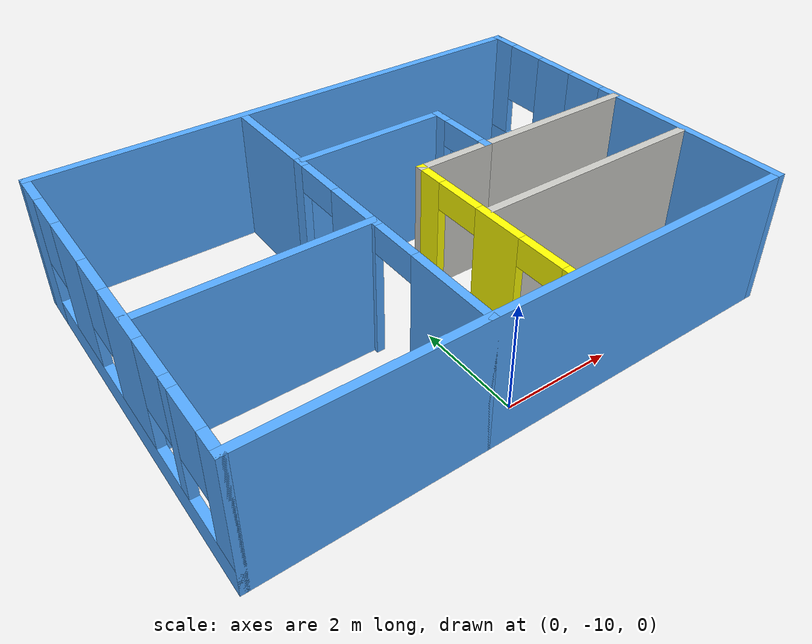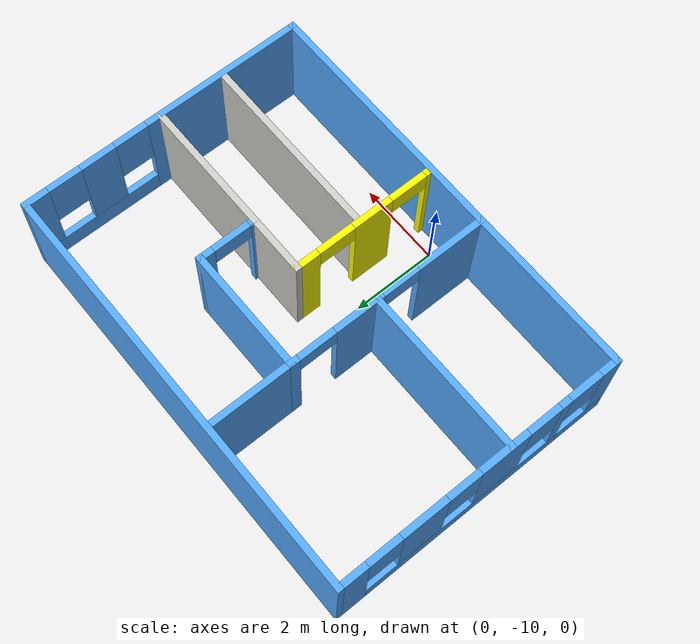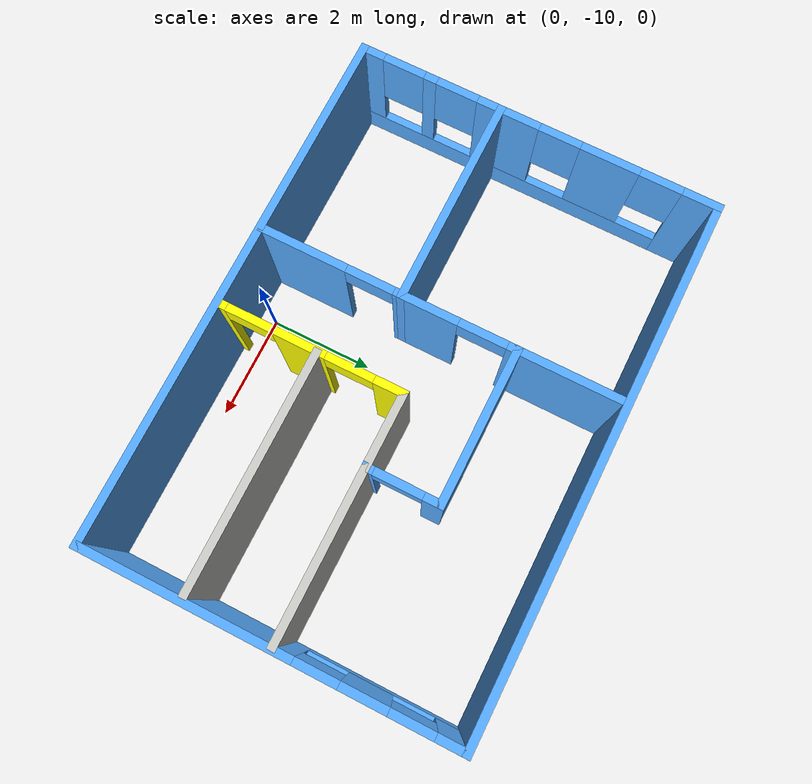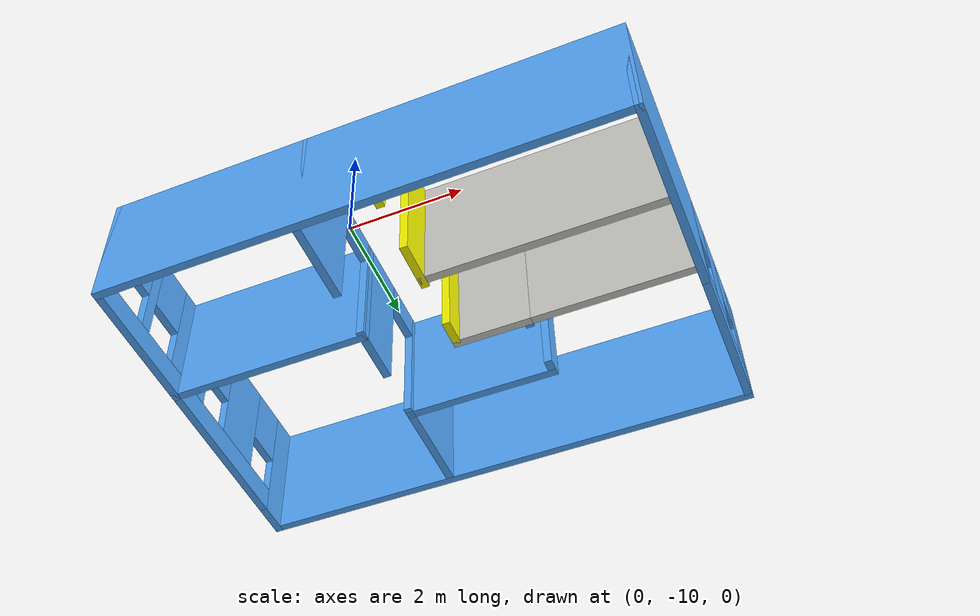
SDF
<?xml version='1.0'?>
<sdf version='1.6'>
  <model name='building'>
    <pose frame=''>0.225 -6.955 0 0 -0 0</pose>
    <link name='Wall_13'>
      <pose frame=''>-4.925 0 0 0 0 -1.5708</pose>
      <visual name='Wall_13_Visual_0'>
        <pose frame=''>-3.1325 0 1.25 0 -0 0</pose>
        <geometry>
          <box>
            <size>0.735 0.15 2.5</size>
          </box>
        </geometry>
        <material>
          <script>
            <uri>file://media/materials/scripts/gazebo.material</uri>
            <name>Gazebo/Grey</name>
          </script>
          <ambient>0.333333 0.666667 1 1</ambient>
        </material>
        <meta>
          <layer>0</layer>
        </meta>
      </visual>
      <collision name='Wall_13_Collision_0'>
        <geometry>
          <box>
            <size>0.735 0.15 2.5</size>
          </box>
        </geometry>
        <pose frame=''>-3.1325 0 1.25 0 -0 0</pose>
      </collision>
      <visual name='Wall_13_Visual_1'>
        <pose frame=''>0.3675 0 0.25 0 -0 0</pose>
        <geometry>
          <box>
            <size>6.265 0.15 0.5</size>
          </box>
        </geometry>
        <material>
          <script>
            <uri>file://media/materials/scripts/gazebo.material</uri>
            <name>Gazebo/Grey</name>
          </script>
          <ambient>0.333333 0.666667 1 1</ambient>
        </material>
        <meta>
          <layer>0</layer>
        </meta>
      </visual>
      <collision name='Wall_13_Collision_1'>
        <geometry>
          <box>
            <size>6.265 0.15 0.5</size>
          </box>
        </geometry>
        <pose frame=''>0.3675 0 0.25 0 -0 0</pose>
      </collision>
      <visual name='Wall_13_Visual_2'>
        <pose frame=''>-1.405 0 1.5 0 -0 0</pose>
        <geometry>
          <box>
            <size>1.12 0.15 2</size>
          </box>
        </geometry>
        <material>
          <script>
            <uri>file://media/materials/scripts/gazebo.material</uri>
            <name>Gazebo/Grey</name>
          </script>
          <ambient>0.333333 0.666667 1 1</ambient>
        </material>
        <meta>
          <layer>0</layer>
        </meta>
      </visual>
      <collision name='Wall_13_Collision_2'>
        <geometry>
          <box>
            <size>1.12 0.15 2</size>
          </box>
        </geometry>
        <pose frame=''>-1.405 0 1.5 0 -0 0</pose>
      </collision>
      <visual name='Wall_13_Visual_3'>
        <pose frame=''>0.555 0 1.5 0 -0 0</pose>
        <geometry>
          <box>
            <size>1.2 0.15 2</size>
          </box>
        </geometry>
        <material>
          <script>
            <uri>file://media/materials/scripts/gazebo.material</uri>
            <name>Gazebo/Grey</name>
          </script>
          <ambient>0.333333 0.666667 1 1</ambient>
        </material>
        <meta>
          <layer>0</layer>
        </meta>
      </visual>
      <collision name='Wall_13_Collision_3'>
        <geometry>
          <box>
            <size>1.2 0.15 2</size>
          </box>
        </geometry>
        <pose frame=''>0.555 0 1.5 0 -0 0</pose>
      </collision>
      <visual name='Wall_13_Visual_4'>
        <pose frame=''>2.08 0 1.5 0 -0 0</pose>
        <geometry>
          <box>
            <size>0.25 0.15 2</size>
          </box>
        </geometry>
        <material>
          <script>
            <uri>file://media/materials/scripts/gazebo.material</uri>
            <name>Gazebo/Grey</name>
          </script>
          <ambient>0.333333 0.666667 1 1</ambient>
        </material>
        <meta>
          <layer>0</layer>
        </meta>
      </visual>
      <collision name='Wall_13_Collision_4'>
        <geometry>
          <box>
            <size>0.25 0.15 2</size>
          </box>
        </geometry>
        <pose frame=''>2.08 0 1.5 0 -0 0</pose>
      </collision>
      <visual name='Wall_13_Visual_5'>
        <pose frame=''>3.2525 0 1.5 0 -0 0</pose>
        <geometry>
          <box>
            <size>0.495 0.15 2</size>
          </box>
        </geometry>
        <material>
          <script>
            <uri>file://media/materials/scripts/gazebo.material</uri>
            <name>Gazebo/Grey</name>
          </script>
          <ambient>0.333333 0.666667 1 1</ambient>
        </material>
        <meta>
          <layer>0</layer>
        </meta>
      </visual>
      <collision name='Wall_13_Collision_5'>
        <geometry>
          <box>
            <size>0.495 0.15 2</size>
          </box>
        </geometry>
        <pose frame=''>3.2525 0 1.5 0 -0 0</pose>
      </collision>
      <visual name='Wall_13_Visual_6'>
        <pose frame=''>-2.365 0 1.9 0 -0 0</pose>
        <geometry>
          <box>
            <size>0.8 0.15 1.2</size>
          </box>
        </geometry>
        <material>
          <script>
            <uri>file://media/materials/scripts/gazebo.material</uri>
            <name>Gazebo/Grey</name>
          </script>
          <ambient>0.333333 0.666667 1 1</ambient>
        </material>
        <meta>
          <layer>0</layer>
        </meta>
      </visual>
      <collision name='Wall_13_Collision_6'>
        <geometry>
          <box>
            <size>0.8 0.15 1.2</size>
          </box>
        </geometry>
        <pose frame=''>-2.365 0 1.9 0 -0 0</pose>
      </collision>
      <visual name='Wall_13_Visual_7'>
        <pose frame=''>-0.445 0 1.9 0 -0 0</pose>
        <geometry>
          <box>
            <size>0.8 0.15 1.2</size>
          </box>
        </geometry>
        <material>
          <script>
            <uri>file://media/materials/scripts/gazebo.material</uri>
            <name>Gazebo/Grey</name>
          </script>
          <ambient>0.333333 0.666667 1 1</ambient>
        </material>
        <meta>
          <layer>0</layer>
        </meta>
      </visual>
      <collision name='Wall_13_Collision_7'>
        <geometry>
          <box>
            <size>0.8 0.15 1.2</size>
          </box>
        </geometry>
        <pose frame=''>-0.445 0 1.9 0 -0 0</pose>
      </collision>
      <visual name='Wall_13_Visual_8'>
        <pose frame=''>1.555 0 1.9 0 -0 0</pose>
        <geometry>
          <box>
            <size>0.8 0.15 1.2</size>
          </box>
        </geometry>
        <material>
          <script>
            <uri>file://media/materials/scripts/gazebo.material</uri>
            <name>Gazebo/Grey</name>
          </script>
          <ambient>0.333333 0.666667 1 1</ambient>
        </material>
        <meta>
          <layer>0</layer>
        </meta>
      </visual>
      <collision name='Wall_13_Collision_8'>
        <geometry>
          <box>
            <size>0.8 0.15 1.2</size>
          </box>
        </geometry>
        <pose frame=''>1.555 0 1.9 0 -0 0</pose>
      </collision>
      <visual name='Wall_13_Visual_9'>
        <pose frame=''>2.605 0 1.9 0 -0 0</pose>
        <geometry>
          <box>
            <size>0.8 0.15 1.2</size>
          </box>
        </geometry>
        <material>
          <script>
            <uri>file://media/materials/scripts/gazebo.material</uri>
            <name>Gazebo/Grey</name>
          </script>
          <ambient>0.333333 0.666667 1 1</ambient>
        </material>
        <meta>
          <layer>0</layer>
        </meta>
      </visual>
      <collision name='Wall_13_Collision_9'>
        <geometry>
          <box>
            <size>0.8 0.15 1.2</size>
          </box>
        </geometry>
        <pose frame=''>2.605 0 1.9 0 -0 0</pose>
      </collision>
    </link>
    <link name='Wall_14'>
      <collision name='Wall_14_Collision'>
        <geometry>
          <box>
            <size>10 0.15 2.5</size>
          </box>
        </geometry>
        <pose frame=''>0 0 1.25 0 -0 0</pose>
      </collision>
      <visual name='Wall_14_Visual'>
        <pose frame=''>0 0 1.25 0 -0 0</pose>
        <geometry>
          <box>
            <size>10 0.15 2.5</size>
          </box>
        </geometry>
        <material>
          <script>
            <uri>file://media/materials/scripts/gazebo.material</uri>
            <name>Gazebo/Grey</name>
          </script>
          <ambient>0.333333 0.666667 1 1</ambient>
        </material>
        <meta>
          <layer>0</layer>
        </meta>
      </visual>
      <pose frame=''>0 -3.425 0 0 -0 0</pose>
    </link>
    <link name='Wall_15'>
      <pose frame=''>4.925 0 0 0 -0 1.5708</pose>
      <visual name='Wall_15_Visual_0'>
        <pose frame=''>-1.5275 0 1.25 0 -0 0</pose>
        <geometry>
          <box>
            <size>3.945 0.15 2.5</size>
          </box>
        </geometry>
        <material>
          <script>
            <uri>file://media/materials/scripts/gazebo.material</uri>
            <name>Gazebo/Grey</name>
          </script>
          <ambient>0.333333 0.666667 1 1</ambient>
        </material>
        <meta>
          <layer>0</layer>
        </meta>
      </visual>
      <collision name='Wall_15_Collision_0'>
        <geometry>
          <box>
            <size>3.945 0.15 2.5</size>
          </box>
        </geometry>
        <pose frame=''>-1.5275 0 1.25 0 -0 0</pose>
      </collision>
      <visual name='Wall_15_Visual_1'>
        <pose frame=''>1.9725 0 0.25 0 -0 0</pose>
        <geometry>
          <box>
            <size>3.055 0.15 0.5</size>
          </box>
        </geometry>
        <material>
          <script>
            <uri>file://media/materials/scripts/gazebo.material</uri>
            <name>Gazebo/Grey</name>
          </script>
          <ambient>0.333333 0.666667 1 1</ambient>
        </material>
        <meta>
          <layer>0</layer>
        </meta>
      </visual>
      <collision name='Wall_15_Collision_1'>
        <geometry>
          <box>
            <size>3.055 0.15 0.5</size>
          </box>
        </geometry>
        <pose frame=''>1.9725 0 0.25 0 -0 0</pose>
      </collision>
      <visual name='Wall_15_Visual_2'>
        <pose frame=''>1.67 0 1.5 0 -0 0</pose>
        <geometry>
          <box>
            <size>0.85 0.15 2</size>
          </box>
        </geometry>
        <material>
          <script>
            <uri>file://media/materials/scripts/gazebo.material</uri>
            <name>Gazebo/Grey</name>
          </script>
          <ambient>0.333333 0.666667 1 1</ambient>
        </material>
        <meta>
          <layer>0</layer>
        </meta>
      </visual>
      <collision name='Wall_15_Collision_2'>
        <geometry>
          <box>
            <size>0.85 0.15 2</size>
          </box>
        </geometry>
        <pose frame=''>1.67 0 1.5 0 -0 0</pose>
      </collision>
      <visual name='Wall_15_Visual_3'>
        <pose frame=''>3.1975 0 1.5 0 -0 0</pose>
        <geometry>
          <box>
            <size>0.605 0.15 2</size>
          </box>
        </geometry>
        <material>
          <script>
            <uri>file://media/materials/scripts/gazebo.material</uri>
            <name>Gazebo/Grey</name>
          </script>
          <ambient>0.333333 0.666667 1 1</ambient>
        </material>
        <meta>
          <layer>0</layer>
        </meta>
      </visual>
      <collision name='Wall_15_Collision_3'>
        <geometry>
          <box>
            <size>0.605 0.15 2</size>
          </box>
        </geometry>
        <pose frame=''>3.1975 0 1.5 0 -0 0</pose>
      </collision>
      <visual name='Wall_15_Visual_4'>
        <pose frame=''>0.845 0 1.9 0 -0 0</pose>
        <geometry>
          <box>
            <size>0.8 0.15 1.2</size>
          </box>
        </geometry>
        <material>
          <script>
            <uri>file://media/materials/scripts/gazebo.material</uri>
            <name>Gazebo/Grey</name>
          </script>
          <ambient>0.333333 0.666667 1 1</ambient>
        </material>
        <meta>
          <layer>0</layer>
        </meta>
      </visual>
      <collision name='Wall_15_Collision_4'>
        <geometry>
          <box>
            <size>0.8 0.15 1.2</size>
          </box>
        </geometry>
        <pose frame=''>0.845 0 1.9 0 -0 0</pose>
      </collision>
      <visual name='Wall_15_Visual_5'>
        <pose frame=''>2.495 0 1.9 0 -0 0</pose>
        <geometry>
          <box>
            <size>0.8 0.15 1.2</size>
          </box>
        </geometry>
        <material>
          <script>
            <uri>file://media/materials/scripts/gazebo.material</uri>
            <name>Gazebo/Grey</name>
          </script>
          <ambient>0.333333 0.666667 1 1</ambient>
        </material>
        <meta>
          <layer>0</layer>
        </meta>
      </visual>
      <collision name='Wall_15_Collision_5'>
        <geometry>
          <box>
            <size>0.8 0.15 1.2</size>
          </box>
        </geometry>
        <pose frame=''>2.495 0 1.9 0 -0 0</pose>
      </collision>
    </link>
    <link name='Wall_16'>
      <collision name='Wall_16_Collision'>
        <geometry>
          <box>
            <size>10 0.15 2.5</size>
          </box>
        </geometry>
        <pose frame=''>0 0 1.25 0 -0 0</pose>
      </collision>
      <visual name='Wall_16_Visual'>
        <pose frame=''>0 0 1.25 0 -0 0</pose>
        <geometry>
          <box>
            <size>10 0.15 2.5</size>
          </box>
        </geometry>
        <material>
          <script>
            <uri>file://media/materials/scripts/gazebo.material</uri>
            <name>Gazebo/Grey</name>
          </script>
          <ambient>0.333333 0.666667 1 1</ambient>
        </material>
        <meta>
          <layer>0</layer>
        </meta>
      </visual>
      <pose frame=''>0 3.425 0 0 -0 3.14159</pose>
    </link>
    <link name='Wall_26'>
      <pose frame=''>-1.075 -1 0 0 -0 1.5708</pose>
      <visual name='Wall_26_Visual_0'>
        <pose frame=''>-1.6325 0 1.25 0 -0 0</pose>
        <geometry>
          <box>
            <size>1.735 0.15 2.5</size>
          </box>
        </geometry>
        <material>
          <script>
            <uri>file://media/materials/scripts/gazebo.material</uri>
            <name>Gazebo/Grey</name>
          </script>
          <ambient>0.333333 0.666667 1 1</ambient>
        </material>
        <meta>
          <layer>0</layer>
        </meta>
      </visual>
      <collision name='Wall_26_Collision_0'>
        <geometry>
          <box>
            <size>1.735 0.15 2.5</size>
          </box>
        </geometry>
        <pose frame=''>-1.6325 0 1.25 0 -0 0</pose>
      </collision>
      <visual name='Wall_26_Visual_1'>
        <pose frame=''>0.74 0 1.25 0 -0 0</pose>
        <geometry>
          <box>
            <size>1.21 0.15 2.5</size>
          </box>
        </geometry>
        <material>
          <script>
            <uri>file://media/materials/scripts/gazebo.material</uri>
            <name>Gazebo/Grey</name>
          </script>
          <ambient>0.333333 0.666667 1 1</ambient>
        </material>
        <meta>
          <layer>0</layer>
        </meta>
      </visual>
      <collision name='Wall_26_Collision_1'>
        <geometry>
          <box>
            <size>1.21 0.15 2.5</size>
          </box>
        </geometry>
        <pose frame=''>0.74 0 1.25 0 -0 0</pose>
      </collision>
      <visual name='Wall_26_Visual_2'>
        <pose frame=''>2.3725 0 1.25 0 -0 0</pose>
        <geometry>
          <box>
            <size>0.255 0.15 2.5</size>
          </box>
        </geometry>
        <material>
          <script>
            <uri>file://media/materials/scripts/gazebo.material</uri>
            <name>Gazebo/Grey</name>
          </script>
          <ambient>0.333333 0.666667 1 1</ambient>
        </material>
        <meta>
          <layer>0</layer>
        </meta>
      </visual>
      <collision name='Wall_26_Collision_2'>
        <geometry>
          <box>
            <size>0.255 0.15 2.5</size>
          </box>
        </geometry>
        <pose frame=''>2.3725 0 1.25 0 -0 0</pose>
      </collision>
      <visual name='Wall_26_Visual_3'>
        <pose frame=''>-0.315001 0 2.25 0 -0 0</pose>
        <geometry>
          <box>
            <size>0.9 0.15 0.5</size>
          </box>
        </geometry>
        <material>
          <script>
            <uri>file://media/materials/scripts/gazebo.material</uri>
            <name>Gazebo/Grey</name>
          </script>
          <ambient>0.333333 0.666667 1 1</ambient>
        </material>
        <meta>
          <layer>0</layer>
        </meta>
      </visual>
      <collision name='Wall_26_Collision_3'>
        <geometry>
          <box>
            <size>0.9 0.15 0.5</size>
          </box>
        </geometry>
        <pose frame=''>-0.315001 0 2.25 0 -0 0</pose>
      </collision>
      <visual name='Wall_26_Visual_4'>
        <pose frame=''>1.795 0 2.25 0 -0 0</pose>
        <geometry>
          <box>
            <size>0.9 0.15 0.5</size>
          </box>
        </geometry>
        <material>
          <script>
            <uri>file://media/materials/scripts/gazebo.material</uri>
            <name>Gazebo/Grey</name>
          </script>
          <ambient>0.333333 0.666667 1 1</ambient>
        </material>
        <meta>
          <layer>0</layer>
        </meta>
      </visual>
      <collision name='Wall_26_Collision_4'>
        <geometry>
          <box>
            <size>0.9 0.15 0.5</size>
          </box>
        </geometry>
        <pose frame=''>1.795 0 2.25 0 -0 0</pose>
      </collision>
    </link>
    <link name='Wall_29'>
      <collision name='Wall_29_Collision'>
        <geometry>
          <box>
            <size>1.5 0.15 2.5</size>
          </box>
        </geometry>
        <pose frame=''>0 0 1.25 0 -0 0</pose>
      </collision>
      <visual name='Wall_29_Visual'>
        <pose frame=''>0 0 1.25 0 -0 0</pose>
        <geometry>
          <box>
            <size>1.5 0.15 2.5</size>
          </box>
        </geometry>
        <material>
          <script>
            <uri>file://media/materials/scripts/gazebo.material</uri>
            <name>Gazebo/CeilingTiled</name>
          </script>
          <ambient>1 1 0 1</ambient>
        </material>
        <meta>
          <layer>0</layer>
        </meta>
      </visual>
      <pose frame=''>1.1 0.075 0 0 -0 3.14159</pose>
    </link>
    <link name='Wall_30'>
      <pose frame=''>0.425 -1.6 0 0 0 -1.5708</pose>
      <visual name='Wall_30_Visual_0'>
        <pose frame=''>-1.4425 0 1.25 0 -0 0</pose>
        <geometry>
          <box>
            <size>0.615 0.15 2.5</size>
          </box>
        </geometry>
        <material>
          <script>
            <uri>file://media/materials/scripts/gazebo.material</uri>
            <name>Gazebo/Grey</name>
          </script>
          <ambient>1 1 0 1</ambient>
        </material>
        <meta>
          <layer>0</layer>
        </meta>
      </visual>
      <collision name='Wall_30_Collision_0'>
        <geometry>
          <box>
            <size>0.615 0.15 2.5</size>
          </box>
        </geometry>
        <pose frame=''>-1.4425 0 1.25 0 -0 0</pose>
      </collision>
      <visual name='Wall_30_Visual_1'>
        <pose frame=''>0.25 0 1.25 0 -0 0</pose>
        <geometry>
          <box>
            <size>0.97 0.15 2.5</size>
          </box>
        </geometry>
        <material>
          <script>
            <uri>file://media/materials/scripts/gazebo.material</uri>
            <name>Gazebo/Grey</name>
          </script>
          <ambient>1 1 0 1</ambient>
        </material>
        <meta>
          <layer>0</layer>
        </meta>
      </visual>
      <collision name='Wall_30_Collision_1'>
        <geometry>
          <box>
            <size>0.97 0.15 2.5</size>
          </box>
        </geometry>
        <pose frame=''>0.25 0 1.25 0 -0 0</pose>
      </collision>
      <visual name='Wall_30_Visual_2'>
        <pose frame=''>1.6925 0 1.25 0 -0 0</pose>
        <geometry>
          <box>
            <size>0.115001 0.15 2.5</size>
          </box>
        </geometry>
        <material>
          <script>
            <uri>file://media/materials/scripts/gazebo.material</uri>
            <name>Gazebo/Grey</name>
          </script>
          <ambient>1 1 0 1</ambient>
        </material>
        <meta>
          <layer>0</layer>
        </meta>
      </visual>
      <collision name='Wall_30_Collision_2'>
        <geometry>
          <box>
            <size>0.115001 0.15 2.5</size>
          </box>
        </geometry>
        <pose frame=''>1.6925 0 1.25 0 -0 0</pose>
      </collision>
      <visual name='Wall_30_Visual_3'>
        <pose frame=''>-0.685 0 2.25 0 -0 0</pose>
        <geometry>
          <box>
            <size>0.9 0.15 0.5</size>
          </box>
        </geometry>
        <material>
          <script>
            <uri>file://media/materials/scripts/gazebo.material</uri>
            <name>Gazebo/Grey</name>
          </script>
          <ambient>1 1 0 1</ambient>
        </material>
        <meta>
          <layer>0</layer>
        </meta>
      </visual>
      <collision name='Wall_30_Collision_3'>
        <geometry>
          <box>
            <size>0.9 0.15 0.5</size>
          </box>
        </geometry>
        <pose frame=''>-0.685 0 2.25 0 -0 0</pose>
      </collision>
      <visual name='Wall_30_Visual_4'>
        <pose frame=''>1.185 0 2.25 0 -0 0</pose>
        <geometry>
          <box>
            <size>0.9 0.15 0.5</size>
          </box>
        </geometry>
        <material>
          <script>
            <uri>file://media/materials/scripts/gazebo.material</uri>
            <name>Gazebo/Grey</name>
          </script>
          <ambient>1 1 0 1</ambient>
        </material>
        <meta>
          <layer>0</layer>
        </meta>
      </visual>
      <collision name='Wall_30_Collision_4'>
        <geometry>
          <box>
            <size>0.9 0.15 0.5</size>
          </box>
        </geometry>
        <pose frame=''>1.185 0 2.25 0 -0 0</pose>
      </collision>
    </link>
    <link name='Wall_32'>
      <collision name='Wall_32_Collision'>
        <geometry>
          <box>
            <size>4 0.15 2.5</size>
          </box>
        </geometry>
        <pose frame=''>0 0 1.25 0 -0 0</pose>
      </collision>
      <visual name='Wall_32_Visual'>
        <pose frame=''>0 0 1.25 0 -0 0</pose>
        <geometry>
          <box>
            <size>4 0.15 2.5</size>
          </box>
        </geometry>
        <material>
          <script>
            <uri>file://media/materials/scripts/gazebo.material</uri>
            <name>Gazebo/Grey</name>
          </script>
          <ambient>0.333333 0.666667 1 1</ambient>
        </material>
        <meta>
          <layer>0</layer>
        </meta>
      </visual>
      <pose frame=''>-3 -0.715 0 0 -0 3.14159</pose>
    </link>
    <link name='Wall_41'>
      <collision name='Wall_41_Collision'>
        <geometry>
          <box>
            <size>3 0.15 2.5</size>
          </box>
        </geometry>
        <pose frame=''>0 0 1.25 0 -0 0</pose>
      </collision>
      <visual name='Wall_41_Visual'>
        <pose frame=''>0 0 1.25 0 -0 0</pose>
        <geometry>
          <box>
            <size>3 0.15 2.5</size>
          </box>
        </geometry>
        <material>
          <script>
            <uri>file://media/materials/scripts/gazebo.material</uri>
            <name>Gazebo/Grey</name>
          </script>
          <ambient>0.333333 0.666667 1 1</ambient>
        </material>
        <meta>
          <layer>0</layer>
        </meta>
      </visual>
      <pose frame=''>0.35 1.425 0 0 -0 0</pose>
    </link>
    <link name='Wall_42'>
      <pose frame=''>1.775 0.75 0 0 0 -1.5708</pose>
      <visual name='Wall_42_Visual_0'>
        <pose frame=''>-0.5575 0 1.25 0 -0 0</pose>
        <geometry>
          <box>
            <size>0.385 0.15 2.5</size>
          </box>
        </geometry>
        <material>
          <script>
            <uri>file://media/materials/scripts/gazebo.material</uri>
            <name>Gazebo/Grey</name>
          </script>
          <ambient>0.333333 0.666667 1 1</ambient>
        </material>
        <meta>
          <layer>0</layer>
        </meta>
      </visual>
      <collision name='Wall_42_Collision_0'>
        <geometry>
          <box>
            <size>0.385 0.15 2.5</size>
          </box>
        </geometry>
        <pose frame=''>-0.5575 0 1.25 0 -0 0</pose>
      </collision>
      <visual name='Wall_42_Visual_1'>
        <pose frame=''>0.6425 0 1.25 0 -0 0</pose>
        <geometry>
          <box>
            <size>0.215 0.15 2.5</size>
          </box>
        </geometry>
        <material>
          <script>
            <uri>file://media/materials/scripts/gazebo.material</uri>
            <name>Gazebo/Grey</name>
          </script>
          <ambient>0.333333 0.666667 1 1</ambient>
        </material>
        <meta>
          <layer>0</layer>
        </meta>
      </visual>
      <collision name='Wall_42_Collision_1'>
        <geometry>
          <box>
            <size>0.215 0.15 2.5</size>
          </box>
        </geometry>
        <pose frame=''>0.6425 0 1.25 0 -0 0</pose>
      </collision>
      <visual name='Wall_42_Visual_2'>
        <pose frame=''>0.085 0 2.25 0 -0 0</pose>
        <geometry>
          <box>
            <size>0.9 0.15 0.5</size>
          </box>
        </geometry>
        <material>
          <script>
            <uri>file://media/materials/scripts/gazebo.material</uri>
            <name>Gazebo/Grey</name>
          </script>
          <ambient>0.333333 0.666667 1 1</ambient>
        </material>
        <meta>
          <layer>0</layer>
        </meta>
      </visual>
      <collision name='Wall_42_Collision_2'>
        <geometry>
          <box>
            <size>0.9 0.15 0.5</size>
          </box>
        </geometry>
        <pose frame=''>0.085 0 2.25 0 -0 0</pose>
      </collision>
    </link>
    <link name='Wall_46'>
      <collision name='Wall_46_Collision'>
        <geometry>
          <box>
            <size>2 0.15 2.5</size>
          </box>
        </geometry>
        <pose frame=''>0 0 1.25 0 -0 0</pose>
      </collision>
      <visual name='Wall_46_Visual'>
        <pose frame=''>0 0 1.25 0 -0 0</pose>
        <geometry>
          <box>
            <size>2 0.15 2.5</size>
          </box>
        </geometry>
        <material>
          <script>
            <uri>file://media/materials/scripts/gazebo.material</uri>
            <name>Gazebo/Grey</name>
          </script>
          <ambient>0.333333 0.666667 1 1</ambient>
        </material>
        <meta>
          <layer>0</layer>
        </meta>
      </visual>
      <pose frame=''>-1.075 2.35 0 0 -0 1.5708</pose>
    </link>
    <link name='Wall_48'>
      <collision name='Wall_48_Collision'>
        <geometry>
          <box>
            <size>3.25 0.15 2.5</size>
          </box>
        </geometry>
        <pose frame=''>0 0 1.25 0 -0 0</pose>
      </collision>
      <visual name='Wall_48_Visual'>
        <pose frame=''>0 0 1.25 0 -0 0</pose>
        <geometry>
          <box>
            <size>3.25 0.15 2.5</size>
          </box>
        </geometry>
        <material>
          <script>
            <uri>file://media/materials/scripts/gazebo.material</uri>
            <name>Gazebo/CeilingTiled</name>
          </script>
          <ambient>1 1 0 1</ambient>
        </material>
        <meta>
          <layer>0</layer>
        </meta>
      </visual>
      <pose frame=''>3.325 0.075 0 0 -0 0</pose>
    </link>
    <link name='Wall_54'>
      <collision name='Wall_54_Collision'>
        <geometry>
          <box>
            <size>4.5 0.15 2.5</size>
          </box>
        </geometry>
        <pose frame=''>0 0 1.25 0 -0 0</pose>
      </collision>
      <visual name='Wall_54_Visual'>
        <pose frame=''>0 0 1.25 0 -0 0</pose>
        <geometry>
          <box>
            <size>4.5 0.15 2.5</size>
          </box>
        </geometry>
        <material>
          <script>
            <uri>file://media/materials/scripts/gazebo.material</uri>
            <name>Gazebo/CeilingTiled</name>
          </script>
          <ambient>1 1 0 1</ambient>
        </material>
        <meta>
          <layer>0</layer>
        </meta>
      </visual>
      <pose frame=''>2.63 -1.525 0 0 -0 0</pose>
    </link>
    <static>1</static>
  </model>
</sdf>
